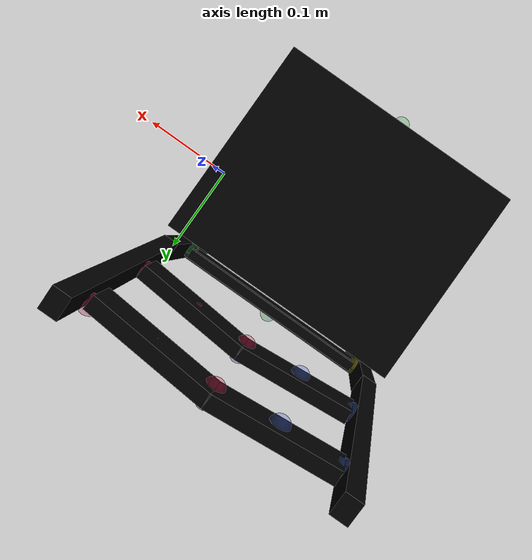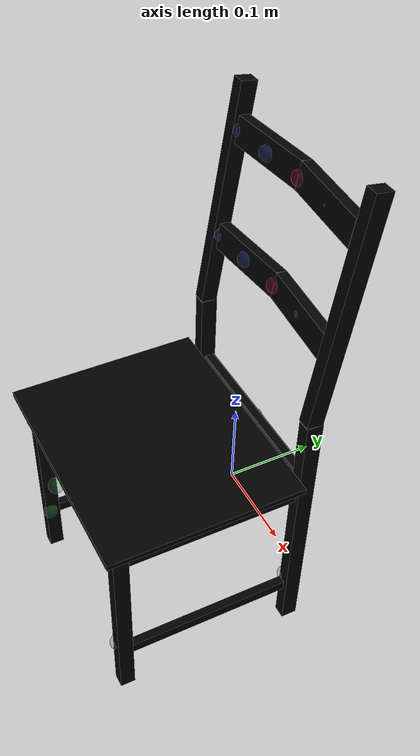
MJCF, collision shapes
<mujoco model="chair_ivar_0668">
  <asset>
    <mesh file="chair_ivar_0668/0.stl" name="part0" scale="0.000576 0.000576 0.000576" />
    <mesh file="chair_ivar_0668/4.stl" name="part4" scale="0.000576 0.000576 0.000576" />
    <mesh file="chair_ivar_0668/3.stl" name="part3" scale="0.000576 0.000576 0.000576" />
    <mesh file="chair_ivar_0668/2.stl" name="part2" scale="0.000576 0.000576 0.000576" />
    <mesh file="chair_ivar_0668/1.stl" name="part1" scale="0.000576 0.000576 0.000576" />
  </asset>
  <equality>
    <weld active="false" body1="0_part0" body2="1_part1" solimp="1 1 0.5" solref="0.01 0.3" />
    <weld active="false" body1="0_part0" body2="2_part2" solimp="1 1 0.5" solref="0.01 0.3" />
    <weld active="false" body1="0_part0" body2="3_part3" solimp="1 1 0.5" solref="0.01 0.3" />
    <weld active="false" body1="0_part0" body2="4_part4" solimp="1 1 0.5" solref="0.01 0.3" />
    <weld active="false" body1="4_part4" body2="1_part1" solimp="1 1 0.5" solref="0.01 0.3" />
    <weld active="false" body1="3_part3" body2="1_part1" solimp="1 1 0.5" solref="0.01 0.3" />
    <weld active="false" body1="2_part2" body2="1_part1" solimp="1 1 0.5" solref="0.01 0.3" />
    <weld active="false" body1="2_part2" body2="3_part3" solimp="1 1 0.5" solref="0.01 0.3" />
    <weld active="false" body1="2_part2" body2="4_part4" solimp="1 1 0.5" solref="0.01 0.3" />
    <weld active="false" body1="3_part3" body2="4_part4" solimp="1 1 0.5" solref="0.01 0.3" />

  </equality>
  <worldbody>
    <body name="0_part0" pos="-0.0 0.0 0.0" quat="1 0 0 0">
      <geom conaffinity="0" contype="0" density="0" mesh="part0" name="0_part0_mesh" pos="0.0 0.0 0.0" rgba="0.82 0.71 0.55 1" type="mesh" />
      <site name="0_part0_horizontal_radius_site" pos="-0.0 0.0 0.0" quat="1 0 0 0" rgba="0 0 0 0" size="0.01" />
      <site name="0_part0_top_site" pos="0.0 0.0 0.3372658242048" quat="1 0 0 0" rgba="0 0 0 0" size="0.01" />
      <site name="0_part0_bottom_site" pos="0.0 0.0 -0.3372658242048" quat="1 0 0 0" rgba="0 0 0 0" size="0.01" />
      <site name="0_part0_corner_site8" pos="-0.010972799999999998 0.1568117109312 0.3372658242048" quat="1 0 0 0" rgba="0 0 0 0" size="0.011519999999999999" />
      <site name="0_part0_corner_site7" pos="0.010972799999999998 0.1568117109312 0.3372658242048" quat="1 0 0 0" rgba="0 0 0 0" size="0.011519999999999999" />
      <site name="0_part0_corner_site6" pos="0.010972799999999998 -0.1568117109312 0.3372658242048" quat="1 0 0 0" rgba="0 0 0 0" size="0.011519999999999999" />
      <site name="0_part0_corner_site5" pos="-0.010972799999999998 -0.1568117109312 0.3372658242048" quat="1 0 0 0" rgba="0 0 0 0" size="0.011519999999999999" />
      <site name="0_part0_corner_site4" pos="-0.010972799999999998 0.1568117109312 -0.3372658242048" quat="1 0 0 0" rgba="0 0 0 0" size="0.011519999999999999" />
      <site name="0_part0_corner_site3" pos="0.010972799999999998 0.1568117109312 -0.3372658242048" quat="1 0 0 0" rgba="0 0 0 0" size="0.011519999999999999" />
      <site name="0_part0_corner_site2" pos="0.010972799999999998 -0.1568117109312 -0.3372658242048" quat="1 0 0 0" rgba="0 0 0 0" size="0.011519999999999999" />
      <site name="0_part0_corner_site1" pos="-0.010972799999999998 -0.1568117109312 -0.3372658242048" quat="1 0 0 0" rgba="0 0 0 0" size="0.011519999999999999" />
      <geom density="50" name="noviz_collision_0_part0_0" pos="0.0 0.12383999999999998 0.18719999999999998" quat="0.9973708 -0.07246746 0 0" rgba="0 0 0 0" size="0.008639999999999998 0.010943999999999997 0.14976" solref="0.001 1" type="box" />
      <geom density="50" name="noviz_collision_0_part0_1" pos="0.0 0.10310399999999999 -0.14918399999999998" quat="1 0 0 0" rgba="0 0 0 0" size="0.008639999999999998 0.010943999999999997 0.18719999999999998" solref="0.001 1" type="box" />
      <geom density="50" name="noviz_collision_0_part0_2" pos="0.0 -0.145728 -0.195264" quat="1 0 0 0" rgba="0 0 0 0" size="0.008639999999999998 0.01008 0.14111999999999997" solref="0.001 1" type="box" />
      <geom density="50" name="noviz_collision_0_part0_3" pos="0.0 -0.022463999999999998 -0.070848" quat="1 0 0 0" rgba="0 0 0 0" size="0.007199999999999999 0.11231999999999999 0.01584" solref="0.001 1" type="box" />
      <geom density="50" name="noviz_collision_0_part0_4" pos="0.0 -0.022463999999999998 -0.263808" quat="1 0 0 0" rgba="0 0 0 0" size="0.0057599999999999995 0.11231999999999999 0.007199999999999999" solref="0.001 1" type="box" />
      <site name="lleg-back,0,conn_site2" pos="-0.011059199999999998 0.14457599999999998 0.27792" quat="1 0 0 0" rgba="0.9019 0.0980 0.2941 0.3" size="0.01" />
      <site name="lleg-back,0,conn_site1" pos="-0.010367999999999997 0.11934719999999999 0.14037119999999997" quat="1 0 0 0" rgba="0.9019 0.0980 0.2941 0.3" size="0.01" />
      <site name="lleg-seat,0,conn_site1" pos="-0.010943999999999997 0.10137599999999998 -0.06796799999999999" quat="1 0 0 0" rgba="0.2352 0.7058 0.2941 0.3" size="0.01" />
      <site name="lleg-seat,0,conn_site_fake1" pos="-0.01 -0.15 -0.06" quat="1 0 0 0" rgba="0.2352 0.7058 0.2941 0.3" size="0.01" />
      <site name="lleg-seat,0,conn_site_fake2" pos="-0.01 0.1 -0.26" quat="1 0 0 0" rgba="0.2352 0.7058 0.2941 0.3" size="0.01" />
      <site name="lleg-seat,0,conn_site_fake3" pos="-0.01 -0.15 -0.26" quat="1 0 0 0" rgba="0.2352 0.7058 0.2941 0.3" size="0.01" />

    </body>
    <body name="1_part1" pos="-0.2633472 0.0 0.0" quat="1 0 0 0">
      <geom conaffinity="0" contype="0" density="0" mesh="part1" name="1_part1_mesh" pos="0.0 0.0 0.0" rgba="0.82 0.71 0.55 1" type="mesh" />
      <site name="1_part1_horizontal_radius_site" pos="0.0 0.0 0.0" quat="1 0 0 0" rgba="0 0 0 0" size="0.01" />
      <site name="1_part1_top_site" pos="0.0 0.0 0.3372658242048" quat="1 0 0 0" rgba="0 0 0 0" size="0.01" />
      <site name="1_part1_bottom_site" pos="0.0 0.0 -0.3372658242048" quat="1 0 0 0" rgba="0 0 0 0" size="0.01" />
      <site name="1_part1_corner_site8" pos="-0.010972799999999998 0.1568117109312 0.3372658242048" quat="1 0 0 0" rgba="0 0 0 0" size="0.011519999999999999" />
      <site name="1_part1_corner_site7" pos="0.010972799999999998 0.1568117109312 0.3372658242048" quat="1 0 0 0" rgba="0 0 0 0" size="0.011519999999999999" />
      <site name="1_part1_corner_site6" pos="0.010972799999999998 -0.1568117109312 0.3372658242048" quat="1 0 0 0" rgba="0 0 0 0" size="0.011519999999999999" />
      <site name="1_part1_corner_site5" pos="-0.010972799999999998 -0.1568117109312 0.3372658242048" quat="1 0 0 0" rgba="0 0 0 0" size="0.011519999999999999" />
      <site name="1_part1_corner_site4" pos="-0.010972799999999998 0.1568117109312 -0.3372658242048" quat="1 0 0 0" rgba="0 0 0 0" size="0.011519999999999999" />
      <site name="1_part1_corner_site3" pos="0.010972799999999998 0.1568117109312 -0.3372658242048" quat="1 0 0 0" rgba="0 0 0 0" size="0.011519999999999999" />
      <site name="1_part1_corner_site2" pos="0.010972799999999998 -0.1568117109312 -0.3372658242048" quat="1 0 0 0" rgba="0 0 0 0" size="0.011519999999999999" />
      <site name="1_part1_corner_site1" pos="-0.010972799999999998 -0.1568117109312 -0.3372658242048" quat="1 0 0 0" rgba="0 0 0 0" size="0.011519999999999999" />
      <geom density="50" name="noviz_collision_1_part1_0" pos="0.00011520575999999999 0.12383999999999998 0.18719999999999998" quat="0.9973708 -0.07246746 0 0" rgba="0 0 0 0" size="0.008639999999999998 0.010943999999999997 0.14976" solref="0.001 1" type="box" />
      <geom density="50" name="noviz_collision_1_part1_1" pos="0.00011520575999999999 0.10310399999999999 -0.14918399999999998" quat="1 0 0 0" rgba="0 0 0 0" size="0.008639999999999998 0.010943999999999997 0.18719999999999998" solref="0.001 1" type="box" />
      <geom density="50" name="noviz_collision_1_part1_2" pos="0.00011520575999999999 -0.145728 -0.195264" quat="1 0 0 0" rgba="0 0 0 0" size="0.008639999999999998 0.01008 0.14111999999999997" solref="0.001 1" type="box" />
      <geom density="50" name="noviz_collision_1_part1_3" pos="0.00011520575999999999 -0.022463999999999998 -0.070848" quat="1 0 0 0" rgba="0 0 0 0" size="0.007199999999999999 0.11231999999999999 0.01584" solref="0.001 1" type="box" />
      <geom density="50" name="noviz_collision_1_part1_4" pos="0.00011520575999999999 -0.022463999999999998 -0.263808" quat="1 0 0 0" rgba="0 0 0 0" size="0.0057599999999999995 0.11231999999999999 0.007199999999999999" solref="0.001 1" type="box" />
      <site name="rleg-back,0,conn_site2" pos="0.011347199999999998 0.11640959999999999 0.13979519999999998" quat="1 0 0 0" rgba="0.2627 0.3882 0.8470 0.3" size="0.01" />
      <site name="rleg-back,0,conn_site1" pos="0.009791999999999999 0.13610879999999997 0.2783808" quat="1 0 0 0" rgba="0.2627 0.3882 0.8470 0.3" size="0.01" />
      <site name="rleg-seat,0,conn_site1" pos="0.011635199999999997 0.10252799999999998 -0.06911999999999999" quat="1 0 0 0" rgba="1.0 0.8823 0.0980 0.3" size="0.01" />
      <site name="rleg-seat,0,conn_site_fake1" pos="0.01 -0.15 -0.06" quat="1 0 0 0" rgba="0.2352 0.7058 0.2941 0.3" size="0.01" />
      <site name="rleg-seat,0,conn_site_fake2" pos="0.01 0.1 -0.26" quat="1 0 0 0" rgba="0.2352 0.7058 0.2941 0.3" size="0.01" />
      <site name="rleg-seat,0,conn_site_fake3" pos="0.01 -0.15 -0.26" quat="1 0 0 0" rgba="0.2352 0.7058 0.2941 0.3" size="0.01" />
    </body>
    <body name="4_part4" pos="-0.1316735963712 -0.030624398438399997 -0.06660342771839999" quat="1 0 0 0">
      <geom conaffinity="0" contype="0" density="0" mesh="part4" name="4_part4_mesh" pos="0.0 0.0 0.0" rgba="0.82 0.71 0.55 1" type="mesh" />
      <site name="4_part4_horizontal_radius_site" pos="0.0 0.0 0.0" quat="1 0 0 0" rgba="0 0 0 0" size="0.01" />
      <site name="4_part4_top_site" pos="0.0 0.0 0.021945603513599997" quat="1 0 0 0" rgba="0 0 0 0" size="0.01" />
      <site name="4_part4_bottom_site" pos="0.0 0.0 -0.021945603513599997" quat="1 0 0 0" rgba="0 0 0 0" size="0.01" />
      <site name="4_part4_corner_site8" pos="-0.15727680339839997 0.1408176562752 0.021945603513599997" quat="1 0 0 0" rgba="0 0 0 0" size="0.011519999999999999" />
      <site name="4_part4_corner_site7" pos="0.15727680339839997 0.1408176562752 0.021945603513599997" quat="1 0 0 0" rgba="0 0 0 0" size="0.011519999999999999" />
      <site name="4_part4_corner_site6" pos="0.15727680339839997 -0.1408176562752 0.021945603513599997" quat="1 0 0 0" rgba="0 0 0 0" size="0.011519999999999999" />
      <site name="4_part4_corner_site5" pos="-0.15727680339839997 -0.1408176562752 0.021945603513599997" quat="1 0 0 0" rgba="0 0 0 0" size="0.011519999999999999" />
      <site name="4_part4_corner_site4" pos="-0.15727680339839997 0.1408176562752 -0.021945603513599997" quat="1 0 0 0" rgba="0 0 0 0" size="0.011519999999999999" />
      <site name="4_part4_corner_site3" pos="0.15727680339839997 0.1408176562752 -0.021945603513599997" quat="1 0 0 0" rgba="0 0 0 0" size="0.011519999999999999" />
      <site name="4_part4_corner_site2" pos="0.15727680339839997 -0.1408176562752 -0.021945603513599997" quat="1 0 0 0" rgba="0 0 0 0" size="0.011519999999999999" />
      <site name="4_part4_corner_site1" pos="-0.15727680339839997 -0.1408176562752 -0.021945603513599997" quat="1 0 0 0" rgba="0 0 0 0" size="0.011519999999999999" />
      <geom density="50" name="noviz_collision_4_part4_0" pos="0.0 -0.009119600639999998 0.0176434272" quat="1 0 0 0" rgba="0 0 0 0" size="0.1572768 0.1296 0.003744" solref="0.001 1" type="box" />
      <geom density="50" name="noviz_collision_4_part4_1" pos="0.0 -0.1145275776 -0.005972572799999998" quat="1 0 0 0" rgba="0 0 0 0" size="0.11807999999999999 0.007199999999999999 0.013535999999999998" solref="0.001 1" type="box" />
      <geom density="50" name="noviz_collision_4_part4_2" pos="0.0 0.1337284224 -0.0038413728" quat="1 0 0 0" rgba="0 0 0 0" size="0.11807999999999999 0.007199999999999999 0.017279999999999997" solref="0.001 1" type="box" />
      <geom density="50" name="noviz_collision_4_part4_3" pos="0.0 0.1337284224 0.0103858272" quat="1 0 0 0" rgba="0 0 0 0" size="0.11807999999999999 0.0057599999999999995 0.003744" solref="0.001 1" type="box" />
      <site name="seat-rleg,0,conn_site1" pos="-0.1200384 0.13315391999999998 -0.0025171199999999994" quat="1 0 0 0" rgba="1.0 0.8823 0.0980 0.3" size="0.01" />
      <site name="seat-lleg,0,conn_site1" pos="0.12072959999999999 0.13200192 -0.0013651199999999998" quat="1 0 0 0" rgba="0.2352 0.7058 0.2941 0.3" size="0.01" />
      <site name="seat-lleg,0,conn_site1_fake1" pos="0.12 -0.125 -0.00136" quat="1 0 0 0" rgba="0.2352 0.7058 0.2941 0.3" size="0.01" />
      <site name="seat-rleg,0,conn_site1_fake2" pos="-0.12 -0.125 -0.0025" quat="1 0 0 0" rgba="1.0 0.8823 0.0980 0.3" size="0.01" />
      <site name="seat-lleg,0,conn_site1_fake3" pos="0. 0.14 -0.0025" quat="1 0 0 0" rgba="0.2352 0.7058 0.2941 0.3" size="0.01" />
      <site name="seat-lleg,0,conn_site1_fake4" pos="0. -0.14 -0.0025" quat="1 0 0 0" rgba="0.2352 0.7058 0.2941 0.3" size="0.01" />

    </body>
    <body name="3_part3" pos="-0.1316738199744 0.142250668128 0.2776850824896" quat="1 0 0 0">
      <geom conaffinity="0" contype="0" density="0" mesh="part3" name="3_part3_mesh" pos="0.0 0.0 0.0" rgba="0.82 0.71 0.55 1" type="mesh" />
      <site name="3_part3_horizontal_radius_site" pos="0.0 -0.0 0.0" quat="1 0 0 0" rgba="0 0 0 0" size="0.01" />
      <site name="3_part3_top_site" pos="0.0 0.0 0.018291426796799997" quat="1 0 0 0" rgba="0 0 0 0" size="0.01" />
      <site name="3_part3_bottom_site" pos="0.0 0.0 -0.018291426796799997" quat="1 0 0 0" rgba="0 0 0 0" size="0.01" />
      <site name="3_part3_corner_site8" pos="-0.13167338376959997 0.0131145826752 0.018291426796799997" quat="1 0 0 0" rgba="0 0 0 0" size="0.011519999999999999" />
      <site name="3_part3_corner_site7" pos="0.13167338376959997 0.0131145826752 0.018291426796799997" quat="1 0 0 0" rgba="0 0 0 0" size="0.011519999999999999" />
      <site name="3_part3_corner_site6" pos="0.13167338376959997 -0.0131145826752 0.018291426796799997" quat="1 0 0 0" rgba="0 0 0 0" size="0.011519999999999999" />
      <site name="3_part3_corner_site5" pos="-0.13167338376959997 -0.0131145826752 0.018291426796799997" quat="1 0 0 0" rgba="0 0 0 0" size="0.011519999999999999" />
      <site name="3_part3_corner_site4" pos="-0.13167338376959997 0.0131145826752 -0.018291426796799997" quat="1 0 0 0" rgba="0 0 0 0" size="0.011519999999999999" />
      <site name="3_part3_corner_site3" pos="0.13167338376959997 0.0131145826752 -0.018291426796799997" quat="1 0 0 0" rgba="0 0 0 0" size="0.011519999999999999" />
      <site name="3_part3_corner_site2" pos="0.13167338376959997 -0.0131145826752 -0.018291426796799997" quat="1 0 0 0" rgba="0 0 0 0" size="0.011519999999999999" />
      <site name="3_part3_corner_site1" pos="-0.13167338376959997 -0.0131145826752 -0.018291426796799997" quat="1 0 0 0" rgba="0 0 0 0" size="0.011519999999999999" />
      <geom density="50" name="noviz_collision_3_part3_0" pos="-0.0607101696 2.1329279999999998e-05 0.0016749158399999998" quat="0.9965003 -0.071306 -0.003113293 0.0435083" rgba="0 0 0 0" size="0.060479999999999985 0.007199999999999999 0.017279999999999997" solref="0.001 1" type="box" />
      <geom density="50" name="noviz_collision_3_part3_1" pos="0.05852183039999999 2.1329279999999998e-05 0.0016749158399999998" quat="0.9965003 -0.07130595 0.003113286 -0.04350817" rgba="0 0 0 0" size="0.060479999999999985 0.007199999999999999 0.017279999999999997" solref="0.001 1" type="box" />
      <site name="back-lleg,0,conn_site2" pos="0.12061439999999997 0.00232704 0.00023616" quat="1 0 0 0" rgba="0.9019 0.0980 0.2941 0.3" size="0.01" />
      <site name="back-rleg,0,conn_site1" pos="-0.12188159999999999 -0.006140159999999999 0.0006969599999999998" quat="1 0 0 0" rgba="0.2627 0.3882 0.8470 0.3" size="0.01" />

      <site name="back-lleg,0,conn_site2_fake1" pos="0.0 0.0 0.0" quat="1 0 0 0" rgba="0.9019 0.0980 0.2941 0.3" size="0.01" />
      <site name="back-rleg,0,conn_site1_fake2" pos="0.0 0.01 0.0" quat="1 0 0 0" rgba="0.2627 0.3882 0.8470 0.3" size="0.01" />

      <site name="back-lleg,0,conn_site2_fake3" pos="0.06 0.00232704 0.00023616" quat="1 0 0 0" rgba="0.9019 0.0980 0.2941 0.3" size="0.01" />
      <site name="back-rleg,0,conn_site1_fake4" pos="-0.06 -0.006140159999999999 0.0006969599999999998" quat="1 0 0 0" rgba="0.2627 0.3882 0.8470 0.3" size="0.01" />

    </body>
    <body name="2_part2" pos="-0.1316738199744 0.12192796926719998 0.1401403679424" quat="1 0 0 0">
      <geom conaffinity="0" contype="0" density="0" mesh="part2" name="2_part2_mesh" pos="0.0 0.0 0.0" rgba="0.82 0.71 0.55 1" type="mesh" />
      <site name="2_part2_horizontal_radius_site" pos="0.0 -0.0 0.0" quat="1 0 0 0" rgba="0 0 0 0" size="0.01" />
      <site name="2_part2_top_site" pos="0.0 0.0 0.018291426796799997" quat="1 0 0 0" rgba="0 0 0 0" size="0.01" />
      <site name="2_part2_bottom_site" pos="0.0 0.0 -0.018291426796799997" quat="1 0 0 0" rgba="0 0 0 0" size="0.01" />
      <site name="2_part2_corner_site8" pos="-0.13167338376959997 0.0131145826752 0.018291426796799997" quat="1 0 0 0" rgba="0 0 0 0" size="0.011519999999999999" />
      <site name="2_part2_corner_site7" pos="0.13167338376959997 0.0131145826752 0.018291426796799997" quat="1 0 0 0" rgba="0 0 0 0" size="0.011519999999999999" />
      <site name="2_part2_corner_site6" pos="0.13167338376959997 -0.0131145826752 0.018291426796799997" quat="1 0 0 0" rgba="0 0 0 0" size="0.011519999999999999" />
      <site name="2_part2_corner_site5" pos="-0.13167338376959997 -0.0131145826752 0.018291426796799997" quat="1 0 0 0" rgba="0 0 0 0" size="0.011519999999999999" />
      <site name="2_part2_corner_site4" pos="-0.13167338376959997 0.0131145826752 -0.018291426796799997" quat="1 0 0 0" rgba="0 0 0 0" size="0.011519999999999999" />
      <site name="2_part2_corner_site3" pos="0.13167338376959997 0.0131145826752 -0.018291426796799997" quat="1 0 0 0" rgba="0 0 0 0" size="0.011519999999999999" />
      <site name="2_part2_corner_site2" pos="0.13167338376959997 -0.0131145826752 -0.018291426796799997" quat="1 0 0 0" rgba="0 0 0 0" size="0.011519999999999999" />
      <site name="2_part2_corner_site1" pos="-0.13167338376959997 -0.0131145826752 -0.018291426796799997" quat="1 0 0 0" rgba="0 0 0 0" size="0.011519999999999999" />
      <geom density="50" name="noviz_collision_2_part2_0" pos="-0.058982169599999995 0.00018403199999999996 1.3040639999999998e-05" quat="0.9965003 -0.071306 -0.003113293 0.0435083" rgba="0 0 0 0" size="0.060479999999999985 0.007199999999999999 0.017279999999999997" solref="0.001 1" type="box" />
      <geom density="50" name="noviz_collision_2_part2_1" pos="0.060249830399999996 0.00018403199999999996 1.3040639999999998e-05" quat="0.9965003 -0.07130595 0.003113286 -0.04350817" rgba="0 0 0 0" size="0.060479999999999985 0.007199999999999999 0.017279999999999997" solref="0.001 1" type="box" />
      <site name="back-lleg,0,conn_site1" pos="0.12130559999999999 -0.0025804799999999996 0.0002304" quat="1 0 0 0" rgba="0.9019 0.0980 0.2941 0.3" size="0.01" />
      <site name="back-rleg,0,conn_site2" pos="-0.12032639999999999 -0.005518079999999999 -0.00034559999999999994" quat="1 0 0 0" rgba="0.2627 0.3882 0.8470 0.3" size="0.01" />

      <site name="back-lleg,0,conn_site1_fake1" pos="0.0 0.0 0.0" quat="1 0 0 0" rgba="0.9019 0.0980 0.2941 0.3" size="0.01" />
      <site name="back-rleg,0,conn_site2_fake2" pos="0.0 0.01 0.0" quat="1 0 0 0" rgba="0.2627 0.3882 0.8470 0.3" size="0.01" />

      <site name="back-lleg,0,conn_site1_fake3" pos="0.06 0.00232704 0.00023616" quat="1 0 0 0" rgba="0.9019 0.0980 0.2941 0.3" size="0.01" />
      <site name="back-rleg,0,conn_site2_fake4" pos="-0.06 -0.006140159999999999 0.0006969599999999998" quat="1 0 0 0" rgba="0.2627 0.3882 0.8470 0.3" size="0.01" />
    </body>

  </worldbody>
<actuator /><sensor /><contact /><default /></mujoco>
